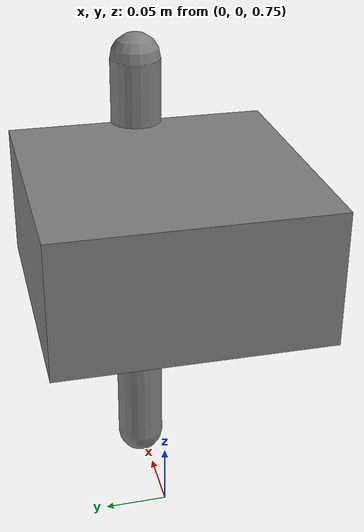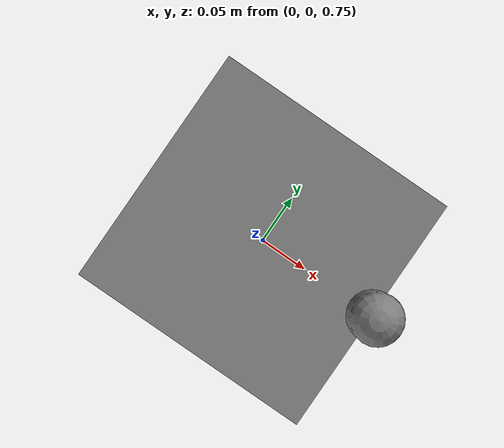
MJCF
<!-- 测试 fixture：故意给 j1 配置两个执行器，验证重复执行器关联时启动失败。 -->
<mujoco model="duplicate_actuator">
  <worldbody>
    <body name="base" pos="0 0 1">
      <freejoint/>
      <site name="imu" pos="0 0 0"/>
      <geom type="box" size="0.1 0.1 0.05" mass="1"/>
      <body name="link1" pos="0.1 0 0">
        <joint name="j1" axis="0 1 0"/>
        <geom type="capsule" size="0.02 0.1" mass="0.1"/>
        <body name="link2" pos="0 0 -0.15">
          <joint name="j2" axis="0 1 0"/>
          <geom type="capsule" size="0.02 0.1" mass="0.1"/>
        </body>
      </body>
    </body>
  </worldbody>
  <actuator>
    <motor joint="j1"/>
    <motor joint="j1"/>
    <motor joint="j2"/>
  </actuator>
  <sensor>
    <framequat name="imu_quat" objtype="site" objname="imu"/>
    <gyro name="imu_gyro" site="imu"/>
    <accelerometer name="imu_acc" site="imu"/>
  </sensor>
</mujoco>
